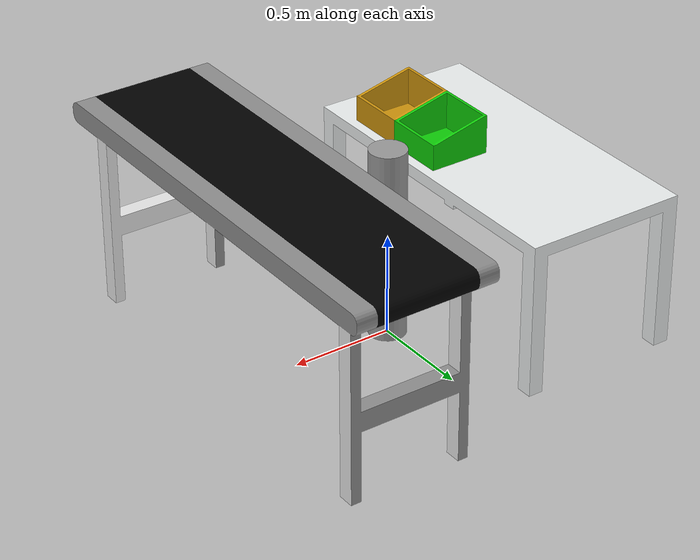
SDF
<sdf version="1.6">
 <world name="default">
  <light name="sun" type="directional">
   <pose>0 0 10 0 -0 0</pose>
   <diffuse>0.8 0.8 0.8 1</diffuse>
   <specular>0.2 0.2 0.2 1</specular>
   <attenuation>
    <range>1000</range>
    <constant>0.9</constant>
    <linear>0.01</linear>
    <quadratic>0.001</quadratic>
   </attenuation>
   <direction>-0.5 0.1 -0.9</direction>
  </light>
  <model name="ground_plane">
   <static>1</static>
   <link name="link">
    <collision name="collision">
     <geometry><plane><normal>0 0 1</normal><size>100 100</size></plane></geometry>
     <surface>
      <contact><collide_bitmask>65535</collide_bitmask></contact>
      <friction><ode><mu>100</mu><mu2>50</mu2></ode></friction>
     </surface>
    </collision>
    <visual name="visual">
     <cast_shadows>0</cast_shadows>
     <geometry><plane><normal>0 0 1</normal><size>100 100</size></plane></geometry>
     <material>
      <script><uri>file://media/materials/scripts/gazebo.material</uri><name>Gazebo/Grey</name></script>
     </material>
    </visual>
   </link>
  </model>
  <gravity>0 0 -9.8</gravity>
  <magnetic_field>6e-06 2.3e-05 -4.2e-05</magnetic_field>
  <atmosphere type="adiabatic"/>
  <physics name="default_physics" default="0" type="ode">
   <max_step_size>0.001</max_step_size>
   <real_time_factor>1</real_time_factor>
   <real_time_update_rate>1000</real_time_update_rate>
  </physics>
  <scene><ambient>0.4 0.4 0.4 1</ambient><background>0.7 0.7 0.7 1</background><shadows>1</shadows></scene>
  <spherical_coordinates>
   <surface_model>EARTH_WGS84</surface_model>
   <latitude_deg>0</latitude_deg>
   <longitude_deg>0</longitude_deg>
   <elevation>0</elevation>
   <heading_deg>0</heading_deg>
  </spherical_coordinates>
  <model name="conveyor">
   <link name="link">
    <inertial>
     <mass>1</mass>
     <inertia><ixx>1</ixx><ixy>0</ixy><ixz>0</ixz><iyy>1</iyy><iyz>0</iyz><izz>1</izz></inertia>
    </inertial>
    <visual name="visual">
     <pose>0 0 0.95 0 -0 0</pose>
     <geometry><mesh><scale>0.45 0.35 0.5</scale><uri>model://conveyor/meshes/conveyor.dae</uri></mesh></geometry>
    </visual>
    <collision name="collision_0">
     <pose>0 0 0.95 0 -0 0</pose>
     <geometry><box><size>2.4 0.8 0.1</size></box></geometry>
     <surface>
      <friction>
       <ode><mu>1</mu><mu2>1</mu2><fdir1>0 0 0</fdir1><slip1>0</slip1><slip2>0</slip2></ode>
       <torsional>
        <coefficient>1</coefficient>
        <patch_radius>0</patch_radius>
        <surface_radius>0</surface_radius>
        <use_patch_radius>1</use_patch_radius>
        <ode><slip>0</slip></ode>
       </torsional>
      </friction>
      <bounce><restitution_coefficient>0</restitution_coefficient><threshold>1e+06</threshold></bounce>
      <contact>
       <collide_without_contact>0</collide_without_contact>
       <collide_without_contact_bitmask>1</collide_without_contact_bitmask>
       <collide_bitmask>1</collide_bitmask>
       <ode>
        <soft_cfm>0</soft_cfm>
        <soft_erp>0.2</soft_erp>
        <kp>1e+13</kp>
        <kd>1</kd>
        <max_vel>0.01</max_vel>
        <min_depth>0</min_depth>
       </ode>
       <bullet>
        <split_impulse>1</split_impulse>
        <split_impulse_penetration_threshold>-0.01</split_impulse_penetration_threshold>
        <soft_cfm>0</soft_cfm>
        <soft_erp>0.2</soft_erp>
        <kp>1e+13</kp>
        <kd>1</kd>
       </bullet>
      </contact>
     </surface>
    </collision>
   </link>
   <static>1</static>
   <pose>0.6 0 0 0 -0 1.57</pose>
  </model>
  <model name="ground_logo_big">
   <static>1</static>
   <link name="link">
    <visual name="visual">
     <pose>0 0 0.001 0 -0 0</pose>
     <geometry>
      <mesh><scale>1 1 1</scale><uri>model://ground_logo_big/meshes/ground_logo.dae</uri></mesh>
     </geometry>
    </visual>
   </link>
   <pose>-0.5 0 0 0 -0 1.57</pose>
  </model>
  <model name="target_table">
   <link name="link">
    <inertial>
     <mass>1</mass>
     <inertia><ixx>1</ixx><ixy>0</ixy><ixz>0</ixz><iyy>1</iyy><iyz>0</iyz><izz>1</izz></inertia>
    </inertial>
    <visual name="visual">
     <pose>0 0 0.73 0 -0 1.57</pose>
     <geometry><mesh><scale>1 1 1</scale><uri>model://target_table/meshes/target_table.dae</uri></mesh></geometry>
    </visual>
    <collision name="collision_0">
     <pose>0 0 0.73 0 -0 0</pose>
     <geometry><box><size>0.8 1.6 0.06</size></box></geometry>
     <surface>
      <friction>
       <ode><mu>1</mu><mu2>1</mu2><fdir1>0 0 0</fdir1><slip1>0</slip1><slip2>0</slip2></ode>
       <torsional>
        <coefficient>1</coefficient>
        <patch_radius>0</patch_radius>
        <surface_radius>0</surface_radius>
        <use_patch_radius>1</use_patch_radius>
        <ode><slip>0</slip></ode>
       </torsional>
      </friction>
      <bounce><restitution_coefficient>0</restitution_coefficient><threshold>1e+06</threshold></bounce>
      <contact>
       <collide_without_contact>0</collide_without_contact>
       <collide_without_contact_bitmask>1</collide_without_contact_bitmask>
       <collide_bitmask>1</collide_bitmask>
       <ode>
        <soft_cfm>0</soft_cfm>
        <soft_erp>0.2</soft_erp>
        <kp>1e+13</kp>
        <kd>1</kd>
        <max_vel>0.01</max_vel>
        <min_depth>0</min_depth>
       </ode>
       <bullet>
        <split_impulse>1</split_impulse>
        <split_impulse_penetration_threshold>-0.01</split_impulse_penetration_threshold>
        <soft_cfm>0</soft_cfm>
        <soft_erp>0.2</soft_erp>
        <kp>1e+13</kp>
        <kd>1</kd>
       </bullet>
      </contact>
     </surface>
    </collision>
   </link>
   <static>1</static>
   <pose>-0.6 0 0 0 -0 1.57</pose>
  </model>
  <model name="robotbase">
   <static>1</static>
   <link name="link">
    <inertial>
     <mass>1</mass>
     <inertia><ixx>0.145833</ixx><ixy>0</ixy><ixz>0</ixz><iyy>0.145833</iyy><iyz>0</iyz><izz>0.125</izz></inertia>
    </inertial>
    <pose>0 0 0.45 0 -0 0</pose>
    <visual name="visual">
     <geometry><cylinder><radius>0.09</radius><length>1.0</length></cylinder></geometry>
     <material>
      <script><name>Gazebo/Grey</name><uri>file://media/materials/scripts/gazebo.material</uri></script>
      <shader type="pixel"><normal_map>__default__</normal_map></shader>
      <ambient>0.3 0.3 0.3 1</ambient>
      <diffuse>0.7 0.7 0.7 1</diffuse>
      <specular>0.01 0.01 0.01 1</specular>
      <emissive>0 0 0 1</emissive>
     </material>
    </visual>
    <collision name="collision">
     <geometry><cylinder><radius>0.09</radius><length>1.0</length></cylinder></geometry>
     <surface>
      <friction>
       <ode><mu>1</mu><mu2>1</mu2><fdir1>0 0 0</fdir1><slip1>0</slip1><slip2>0</slip2></ode>
       <torsional>
        <coefficient>1</coefficient>
        <patch_radius>0</patch_radius>
        <surface_radius>0</surface_radius>
        <use_patch_radius>1</use_patch_radius>
        <ode><slip>0</slip></ode>
       </torsional>
      </friction>
      <bounce><restitution_coefficient>0</restitution_coefficient><threshold>1e+06</threshold></bounce>
      <contact>
       <collide_without_contact>0</collide_without_contact>
       <collide_without_contact_bitmask>1</collide_without_contact_bitmask>
       <collide_bitmask>1</collide_bitmask>
       <ode>
        <soft_cfm>0</soft_cfm>
        <soft_erp>0.2</soft_erp>
        <kp>1e+13</kp>
        <kd>1</kd>
        <max_vel>0.01</max_vel>
        <min_depth>0</min_depth>
       </ode>
       <bullet>
        <split_impulse>1</split_impulse>
        <split_impulse_penetration_threshold>-0.01</split_impulse_penetration_threshold>
        <soft_cfm>0</soft_cfm>
        <soft_erp>0.2</soft_erp>
        <kp>1e+13</kp>
        <kd>1</kd>
       </bullet>
      </contact>
     </surface>
    </collision>
   </link>
   <static>0</static>
  </model>
  <model name="yellow_target">
   <static>1</static>
   <link name="link">
    <inertial>
     <mass>1</mass>
     <inertia><ixx>1</ixx><ixy>0</ixy><ixz>0</ixz><iyy>1</iyy><iyz>0</iyz><izz>1</izz></inertia>
    </inertial>
    <visual name="visual">
     <pose>0 0 0.01 0 -0 0</pose>
     <geometry>
      <mesh><scale>0.5 0.5 0.5</scale><uri>model://yellow_target/meshes/yellow_target.dae</uri></mesh>
     </geometry>
    </visual>
    <collision name="front_wall">
     <pose>0.144 0 0 0 -0 0</pose>
     <geometry><box><size>0.012 0.3 0.24</size></box></geometry>
     <surface>
      <friction>
       <ode><mu>1</mu><mu2>1</mu2><fdir1>0 0 0</fdir1><slip1>0</slip1><slip2>0</slip2></ode>
       <torsional>
        <coefficient>1</coefficient>
        <patch_radius>0</patch_radius>
        <surface_radius>0</surface_radius>
        <use_patch_radius>1</use_patch_radius>
        <ode><slip>0</slip></ode>
       </torsional>
      </friction>
      <bounce><restitution_coefficient>0</restitution_coefficient><threshold>1e+06</threshold></bounce>
      <contact>
       <collide_without_contact>0</collide_without_contact>
       <collide_without_contact_bitmask>1</collide_without_contact_bitmask>
       <collide_bitmask>1</collide_bitmask>
       <ode>
        <soft_cfm>0</soft_cfm>
        <soft_erp>0.2</soft_erp>
        <kp>1e+13</kp>
        <kd>1</kd>
        <max_vel>0.01</max_vel>
        <min_depth>0</min_depth>
       </ode>
       <bullet>
        <split_impulse>1</split_impulse>
        <split_impulse_penetration_threshold>-0.01</split_impulse_penetration_threshold>
        <soft_cfm>0</soft_cfm>
        <soft_erp>0.2</soft_erp>
        <kp>1e+13</kp>
        <kd>1</kd>
       </bullet>
      </contact>
     </surface>
    </collision>
    <collision name="right_wall">
     <pose>0 -0.144 0 0 -0 0</pose>
     <geometry><box><size>0.3 0.012 0.36</size></box></geometry>
     <surface>
      <friction>
       <ode><mu>1</mu><mu2>1</mu2><fdir1>0 0 0</fdir1><slip1>0</slip1><slip2>0</slip2></ode>
       <torsional>
        <coefficient>1</coefficient>
        <patch_radius>0</patch_radius>
        <surface_radius>0</surface_radius>
        <use_patch_radius>1</use_patch_radius>
        <ode><slip>0</slip></ode>
       </torsional>
      </friction>
      <bounce><restitution_coefficient>0</restitution_coefficient><threshold>1e+06</threshold></bounce>
      <contact>
       <collide_without_contact>0</collide_without_contact>
       <collide_without_contact_bitmask>1</collide_without_contact_bitmask>
       <collide_bitmask>1</collide_bitmask>
       <ode>
        <soft_cfm>0</soft_cfm>
        <soft_erp>0.2</soft_erp>
        <kp>1e+13</kp>
        <kd>1</kd>
        <max_vel>0.01</max_vel>
        <min_depth>0</min_depth>
       </ode>
       <bullet>
        <split_impulse>1</split_impulse>
        <split_impulse_penetration_threshold>-0.01</split_impulse_penetration_threshold>
        <soft_cfm>0</soft_cfm>
        <soft_erp>0.2</soft_erp>
        <kp>1e+13</kp>
        <kd>1</kd>
       </bullet>
      </contact>
     </surface>
    </collision>
    <collision name="bottom">
     <geometry><box><size>0.3 0.3 0.025</size></box></geometry>
     <surface>
      <friction>
       <ode><mu>1</mu><mu2>1</mu2><fdir1>0 0 0</fdir1><slip1>0</slip1><slip2>0</slip2></ode>
       <torsional>
        <coefficient>1</coefficient>
        <patch_radius>0</patch_radius>
        <surface_radius>0</surface_radius>
        <use_patch_radius>1</use_patch_radius>
        <ode><slip>0</slip></ode>
       </torsional>
      </friction>
      <bounce><restitution_coefficient>0</restitution_coefficient><threshold>1e+06</threshold></bounce>
      <contact>
       <collide_without_contact>0</collide_without_contact>
       <collide_without_contact_bitmask>1</collide_without_contact_bitmask>
       <collide_bitmask>1</collide_bitmask>
       <ode>
        <soft_cfm>0</soft_cfm>
        <soft_erp>0.2</soft_erp>
        <kp>1e+13</kp>
        <kd>1</kd>
        <max_vel>0.01</max_vel>
        <min_depth>0</min_depth>
       </ode>
       <bullet>
        <split_impulse>1</split_impulse>
        <split_impulse_penetration_threshold>-0.01</split_impulse_penetration_threshold>
        <soft_cfm>0</soft_cfm>
        <soft_erp>0.2</soft_erp>
        <kp>1e+13</kp>
        <kd>1</kd>
       </bullet>
      </contact>
     </surface>
    </collision>
    <collision name="left_wall">
     <pose>0 0.144 0 0 -0 0</pose>
     <geometry><box><size>0.3 0.012 0.39</size></box></geometry>
     <surface>
      <friction>
       <ode><mu>1</mu><mu2>1</mu2><fdir1>0 0 0</fdir1><slip1>0</slip1><slip2>0</slip2></ode>
       <torsional>
        <coefficient>1</coefficient>
        <patch_radius>0</patch_radius>
        <surface_radius>0</surface_radius>
        <use_patch_radius>1</use_patch_radius>
        <ode><slip>0</slip></ode>
       </torsional>
      </friction>
      <bounce><restitution_coefficient>0</restitution_coefficient><threshold>1e+06</threshold></bounce>
      <contact>
       <collide_without_contact>0</collide_without_contact>
       <collide_without_contact_bitmask>1</collide_without_contact_bitmask>
       <collide_bitmask>1</collide_bitmask>
       <ode>
        <soft_cfm>0</soft_cfm>
        <soft_erp>0.2</soft_erp>
        <kp>1e+13</kp>
        <kd>1</kd>
        <max_vel>0.01</max_vel>
        <min_depth>0</min_depth>
       </ode>
       <bullet>
        <split_impulse>1</split_impulse>
        <split_impulse_penetration_threshold>-0.01</split_impulse_penetration_threshold>
        <soft_cfm>0</soft_cfm>
        <soft_erp>0.2</soft_erp>
        <kp>1e+13</kp>
        <kd>1</kd>
       </bullet>
      </contact>
     </surface>
    </collision>
    <collision name="back_wall">
     <pose>-0.144 0 0 0 -0 0</pose>
     <geometry><box><size>0.012 0.3 0.39</size></box></geometry>
     <surface>
      <friction>
       <ode><mu>1</mu><mu2>1</mu2><fdir1>0 0 0</fdir1><slip1>0</slip1><slip2>0</slip2></ode>
       <torsional>
        <coefficient>1</coefficient>
        <patch_radius>0</patch_radius>
        <surface_radius>0</surface_radius>
        <use_patch_radius>1</use_patch_radius>
        <ode><slip>0</slip></ode>
       </torsional>
      </friction>
      <bounce><restitution_coefficient>0</restitution_coefficient><threshold>1e+06</threshold></bounce>
      <contact>
       <collide_without_contact>0</collide_without_contact>
       <collide_without_contact_bitmask>1</collide_without_contact_bitmask>
       <collide_bitmask>1</collide_bitmask>
       <ode>
        <soft_cfm>0</soft_cfm>
        <soft_erp>0.2</soft_erp>
        <kp>1e+13</kp>
        <kd>1</kd>
        <max_vel>0.01</max_vel>
        <min_depth>0</min_depth>
       </ode>
       <bullet>
        <split_impulse>1</split_impulse>
        <split_impulse_penetration_threshold>-0.01</split_impulse_penetration_threshold>
        <soft_cfm>0</soft_cfm>
        <soft_erp>0.2</soft_erp>
        <kp>1e+13</kp>
        <kd>1</kd>
       </bullet>
      </contact>
     </surface>
    </collision>
   </link>
   <pose>-0.4 -0.45 0.755 0 -0 0</pose>
  </model>
  <model name="green_target">
   <static>1</static>
   <link name="link">
    <inertial>
     <mass>1</mass>
     <inertia><ixx>1</ixx><ixy>0</ixy><ixz>0</ixz><iyy>1</iyy><iyz>0</iyz><izz>1</izz></inertia>
    </inertial>
    <visual name="visual">
     <pose>0 0 0.01 0 -0 0</pose>
     <geometry>
      <mesh><scale>0.5 0.5 0.5</scale><uri>model://green_target/meshes/green_target.dae</uri></mesh>
     </geometry>
    </visual>
    <collision name="front_wall">
     <pose>0.144 0 0 0 -0 0</pose>
     <geometry><box><size>0.012 0.3 0.24</size></box></geometry>
     <surface>
      <friction>
       <ode><mu>1</mu><mu2>1</mu2><fdir1>0 0 0</fdir1><slip1>0</slip1><slip2>0</slip2></ode>
       <torsional>
        <coefficient>1</coefficient>
        <patch_radius>0</patch_radius>
        <surface_radius>0</surface_radius>
        <use_patch_radius>1</use_patch_radius>
        <ode><slip>0</slip></ode>
       </torsional>
      </friction>
      <bounce><restitution_coefficient>0</restitution_coefficient><threshold>1e+06</threshold></bounce>
      <contact>
       <collide_without_contact>0</collide_without_contact>
       <collide_without_contact_bitmask>1</collide_without_contact_bitmask>
       <collide_bitmask>1</collide_bitmask>
       <ode>
        <soft_cfm>0</soft_cfm>
        <soft_erp>0.2</soft_erp>
        <kp>1e+13</kp>
        <kd>1</kd>
        <max_vel>0.01</max_vel>
        <min_depth>0</min_depth>
       </ode>
       <bullet>
        <split_impulse>1</split_impulse>
        <split_impulse_penetration_threshold>-0.01</split_impulse_penetration_threshold>
        <soft_cfm>0</soft_cfm>
        <soft_erp>0.2</soft_erp>
        <kp>1e+13</kp>
        <kd>1</kd>
       </bullet>
      </contact>
     </surface>
    </collision>
    <collision name="right_wall">
     <pose>0 -0.144 0 0 -0 0</pose>
     <geometry><box><size>0.3 0.012 0.36</size></box></geometry>
     <surface>
      <friction>
       <ode><mu>1</mu><mu2>1</mu2><fdir1>0 0 0</fdir1><slip1>0</slip1><slip2>0</slip2></ode>
       <torsional>
        <coefficient>1</coefficient>
        <patch_radius>0</patch_radius>
        <surface_radius>0</surface_radius>
        <use_patch_radius>1</use_patch_radius>
        <ode><slip>0</slip></ode>
       </torsional>
      </friction>
      <bounce><restitution_coefficient>0</restitution_coefficient><threshold>1e+06</threshold></bounce>
      <contact>
       <collide_without_contact>0</collide_without_contact>
       <collide_without_contact_bitmask>1</collide_without_contact_bitmask>
       <collide_bitmask>1</collide_bitmask>
       <ode>
        <soft_cfm>0</soft_cfm>
        <soft_erp>0.2</soft_erp>
        <kp>1e+13</kp>
        <kd>1</kd>
        <max_vel>0.01</max_vel>
        <min_depth>0</min_depth>
       </ode>
       <bullet>
        <split_impulse>1</split_impulse>
        <split_impulse_penetration_threshold>-0.01</split_impulse_penetration_threshold>
        <soft_cfm>0</soft_cfm>
        <soft_erp>0.2</soft_erp>
        <kp>1e+13</kp>
        <kd>1</kd>
       </bullet>
      </contact>
     </surface>
    </collision>
    <collision name="bottom">
     <geometry><box><size>0.3 0.3 0.025</size></box></geometry>
     <surface>
      <friction>
       <ode><mu>1</mu><mu2>1</mu2><fdir1>0 0 0</fdir1><slip1>0</slip1><slip2>0</slip2></ode>
       <torsional>
        <coefficient>1</coefficient>
        <patch_radius>0</patch_radius>
        <surface_radius>0</surface_radius>
        <use_patch_radius>1</use_patch_radius>
        <ode><slip>0</slip></ode>
       </torsional>
      </friction>
      <bounce><restitution_coefficient>0</restitution_coefficient><threshold>1e+06</threshold></bounce>
      <contact>
       <collide_without_contact>0</collide_without_contact>
       <collide_without_contact_bitmask>1</collide_without_contact_bitmask>
       <collide_bitmask>1</collide_bitmask>
       <ode>
        <soft_cfm>0</soft_cfm>
        <soft_erp>0.2</soft_erp>
        <kp>1e+13</kp>
        <kd>1</kd>
        <max_vel>0.01</max_vel>
        <min_depth>0</min_depth>
       </ode>
       <bullet>
        <split_impulse>1</split_impulse>
        <split_impulse_penetration_threshold>-0.01</split_impulse_penetration_threshold>
        <soft_cfm>0</soft_cfm>
        <soft_erp>0.2</soft_erp>
        <kp>1e+13</kp>
        <kd>1</kd>
       </bullet>
      </contact>
     </surface>
    </collision>
    <collision name="left_wall">
     <pose>0 0.144 0 0 -0 0</pose>
     <geometry><box><size>0.3 0.012 0.39</size></box></geometry>
     <surface>
      <friction>
       <ode><mu>1</mu><mu2>1</mu2><fdir1>0 0 0</fdir1><slip1>0</slip1><slip2>0</slip2></ode>
       <torsional>
        <coefficient>1</coefficient>
        <patch_radius>0</patch_radius>
        <surface_radius>0</surface_radius>
        <use_patch_radius>1</use_patch_radius>
        <ode><slip>0</slip></ode>
       </torsional>
      </friction>
      <bounce><restitution_coefficient>0</restitution_coefficient><threshold>1e+06</threshold></bounce>
      <contact>
       <collide_without_contact>0</collide_without_contact>
       <collide_without_contact_bitmask>1</collide_without_contact_bitmask>
       <collide_bitmask>1</collide_bitmask>
       <ode>
        <soft_cfm>0</soft_cfm>
        <soft_erp>0.2</soft_erp>
        <kp>1e+13</kp>
        <kd>1</kd>
        <max_vel>0.01</max_vel>
        <min_depth>0</min_depth>
       </ode>
       <bullet>
        <split_impulse>1</split_impulse>
        <split_impulse_penetration_threshold>-0.01</split_impulse_penetration_threshold>
        <soft_cfm>0</soft_cfm>
        <soft_erp>0.2</soft_erp>
        <kp>1e+13</kp>
        <kd>1</kd>
       </bullet>
      </contact>
     </surface>
    </collision>
    <collision name="back_wall">
     <pose>-0.144 0 0 0 -0 0</pose>
     <geometry><box><size>0.012 0.3 0.39</size></box></geometry>
     <surface>
      <friction>
       <ode><mu>1</mu><mu2>1</mu2><fdir1>0 0 0</fdir1><slip1>0</slip1><slip2>0</slip2></ode>
       <torsional>
        <coefficient>1</coefficient>
        <patch_radius>0</patch_radius>
        <surface_radius>0</surface_radius>
        <use_patch_radius>1</use_patch_radius>
        <ode><slip>0</slip></ode>
       </torsional>
      </friction>
      <bounce><restitution_coefficient>0</restitution_coefficient><threshold>1e+06</threshold></bounce>
      <contact>
       <collide_without_contact>0</collide_without_contact>
       <collide_without_contact_bitmask>1</collide_without_contact_bitmask>
       <collide_bitmask>1</collide_bitmask>
       <ode>
        <soft_cfm>0</soft_cfm>
        <soft_erp>0.2</soft_erp>
        <kp>1e+13</kp>
        <kd>1</kd>
        <max_vel>0.01</max_vel>
        <min_depth>0</min_depth>
       </ode>
       <bullet>
        <split_impulse>1</split_impulse>
        <split_impulse_penetration_threshold>-0.01</split_impulse_penetration_threshold>
        <soft_cfm>0</soft_cfm>
        <soft_erp>0.2</soft_erp>
        <kp>1e+13</kp>
        <kd>1</kd>
       </bullet>
      </contact>
     </surface>
    </collision>
   </link>
   <pose>-0.4 -0.15 0.755 0 -0 0</pose>
  </model>
 </world>
</sdf>
